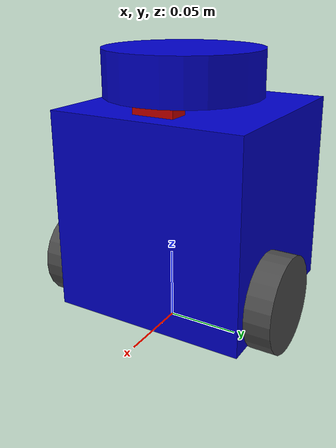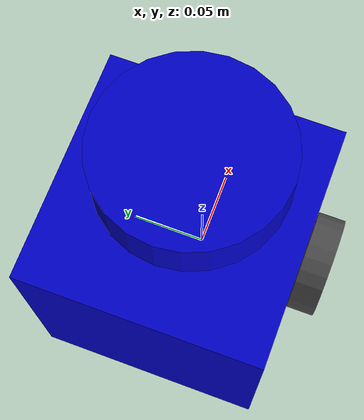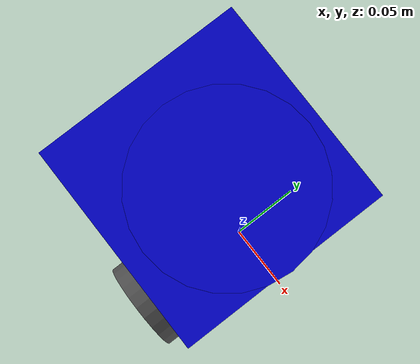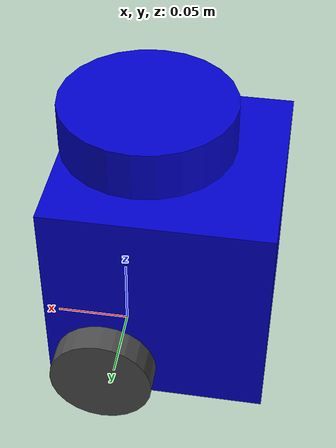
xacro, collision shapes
<?xml version="1.0" ?>
<robot name="turtlebot3_burger" xmlns:xacro="http://ros.org/wiki/xacro">
  <xacro:arg name="robot_name" default="robot"/>

  <!-- Include common properties -->
  <xacro:include filename="$(find cs_bot)/urdf/common_properties.xacro"/>

  <link name="base_footprint"/>

  <joint name="base_joint" type="fixed">
    <parent link="base_footprint"/>
    <child link="base_link"/>
    <origin xyz="0.0 0.0 0.010" rpy="0 0 0"/>
  </joint>

  <link name="base_link">
    <visual>
      <origin xyz="-0.032 0 0.0" rpy="0 0 0"/>
      <geometry>
        <mesh filename="package://turtlebot3_description/meshes/bases/burger_base.stl" scale="0.001 0.001 0.001"/>
      </geometry>
      <material name="blue"/>
    </visual>

    <collision>
      <origin xyz="-0.032 0 0.070" rpy="0 0 0"/>
      <geometry>
        <box size="0.140 0.140 0.143"/>
      </geometry>
    </collision>

    <inertial>
      <origin xyz="0 0 0" rpy="0 0 0"/>
      <mass value="8.2573504e-01"/>
      <inertia ixx="2.2124416e-03" ixy="-1.2294101e-05" ixz="3.4938785e-05"
               iyy="2.1193702e-03" iyz="-5.0120904e-06"
               izz="2.0064271e-03" />
    </inertial>
  </link>

  <joint name="wheel_left_joint" type="continuous">
    <parent link="base_link"/>
    <child link="wheel_left_link"/>
    <origin xyz="0.0 0.08 0.023" rpy="-1.57 0 0"/>
    <axis xyz="0 0 1"/>
  </joint>

  <link name="wheel_left_link">
    <visual>
      <origin xyz="0 0 0" rpy="1.57 0 0"/>
      <geometry>
        <mesh filename="package://turtlebot3_description/meshes/wheels/left_tire.stl" scale="0.001 0.001 0.001"/>
      </geometry>
      <material name="dark"/>
    </visual>

    <collision>
      <origin xyz="0 0 0" rpy="0 0 0"/>
      <geometry>
        <cylinder length="0.018" radius="0.033"/>
      </geometry>
    </collision>

    <inertial>
      <origin xyz="0 0 0" />
      <mass value="2.8498940e-02" />
      <inertia ixx="1.1175580e-05" ixy="-4.2369783e-11" ixz="-5.9381719e-09"
               iyy="1.1192413e-05" iyz="-1.4400107e-11"
               izz="2.0712558e-05" />
      </inertial>
  </link>

  <joint name="wheel_right_joint" type="continuous">
    <parent link="base_link"/>
    <child link="wheel_right_link"/>
    <origin xyz="0.0 -0.080 0.023" rpy="-1.57 0 0"/>
    <axis xyz="0 0 1"/>
  </joint>

  <link name="wheel_right_link">
    <visual>
      <origin xyz="0 0 0" rpy="1.57 0 0"/>
      <geometry>
        <mesh filename="package://turtlebot3_description/meshes/wheels/right_tire.stl" scale="0.001 0.001 0.001"/>
      </geometry>
      <material name="dark"/>
    </visual>

    <collision>
      <origin xyz="0 0 0" rpy="0 0 0"/>
      <geometry>
        <cylinder length="0.018" radius="0.033"/>
      </geometry>
    </collision>

    <inertial>
      <origin xyz="0 0 0" />
      <mass value="2.8498940e-02" />
      <inertia ixx="1.1175580e-05" ixy="-4.2369783e-11" ixz="-5.9381719e-09"
               iyy="1.1192413e-05" iyz="-1.4400107e-11"
               izz="2.0712558e-05" />
      </inertial>
  </link>

  <joint name="caster_back_joint" type="fixed">
    <parent link="base_link"/>
    <child link="caster_back_link"/>
    <origin xyz="-0.081 0 -0.004" rpy="-1.57 0 0"/>
  </joint>

  <link name="caster_back_link">
    <collision>
      <origin xyz="0 0.001 0" rpy="0 0 0"/>
      <geometry>
        <box size="0.030 0.009 0.020"/>
      </geometry>
    </collision>

    <inertial>
      <origin xyz="0 0 0" />
      <mass value="0.005" />
      <inertia ixx="0.001" ixy="0.0" ixz="0.0"
               iyy="0.001" iyz="0.0"
               izz="0.001" />
    </inertial>
  </link>

  <joint name="imu_joint" type="fixed">
    <parent link="base_link"/>
    <child link="imu_link"/>
    <origin xyz="-0.032 0 0.068" rpy="0 0 0"/>
  </joint>

  <link name="imu_link"/>

  <joint name="scan_joint" type="fixed">
    <parent link="base_link"/>
    <child link="base_scan"/>
    <origin xyz="-0.032 0 0.172" rpy="0 0 0"/>
  </joint>

  <link name="base_scan">
    <visual>
      <origin xyz="0 0 0.0" rpy="0 0 0"/>
      <geometry>
        <mesh filename="package://turtlebot3_description/meshes/sensors/lds.stl" scale="0.001 0.001 0.001"/>
      </geometry>
      <material name="blue"/>
    </visual>

    <collision>
      <origin xyz="0.015 0 -0.0065" rpy="0 0 0"/>
      <geometry>
        <cylinder length="0.0315" radius="0.055"/>
      </geometry>
    </collision>

    <inertial>
      <mass value="0.114" />
      <origin xyz="0 0 0" />
      <inertia ixx="0.001" ixy="0.0" ixz="0.0"
               iyy="0.001" iyz="0.0"
               izz="0.001" />
    </inertial>
  </link>

  <plugin name="gazebo_ros_laser" filename="libgazebo_ros_laser.so">
    <topicName>$(arg robot_name)/scan</topicName>
    <frameName>$(arg robot_name)/base_scan</frameName>
  </plugin>

  <!-- Camera Joint -->
  <joint name="camera_joint" type="fixed">
    <parent link="base_link"/>
    <child link="camera_link"/>
    <origin xyz="0.015 0 0.15" rpy="0 0 0"/>
  </joint>

  <!-- Camera Link -->
  <link name="camera_link">
    <visual>
      <origin xyz="0 0 0" rpy="0 0 0"/>
      <geometry>
        <box size="0.015 0.030 0.027"/>
      </geometry>
      <material name="red"/>
    </visual>

    <collision>
      <origin xyz="0 0 0" rpy="0 0 0"/>
      <geometry>
        <box size="0.015 0.030 0.027"/>
      </geometry>
    </collision>

    <inertial>
      <mass value="0.005"/>
      <origin xyz="0 0 0" rpy="0 0 0"/>
      <inertia ixx="0.001" ixy="0.0" ixz="0.0"
               iyy="0.001" iyz="0.0"
               izz="0.001" />
    </inertial>
  </link>

  <!-- Camera Gazebo Plugin Configuration -->
  <gazebo reference="camera_link">
    <sensor type="camera" name="camera">
      <update_rate>30.0</update_rate>
      <camera name="head">
        <horizontal_fov>1.3962634</horizontal_fov>
        <image>
          <width>800</width>
          <height>600</height>
          <format>R8G8B8</format>
        </image>
        <clip>
          <near>0.02</near>
          <far>300</far>
        </clip>
        <noise>
          <type>gaussian</type>
          <mean>0.0</mean>
          <stddev>0.007</stddev>
        </noise>
      </camera>
      <plugin name="camera_controller" filename="libgazebo_ros_camera.so">
        <alwaysOn>true</alwaysOn>
        <updateRate>0.0</updateRate>
        <cameraName>$(arg robot_name)/camera</cameraName>
        <imageTopicName>image_raw</imageTopicName>
        <cameraInfoTopicName>camera_info</cameraInfoTopicName>
        <frameName>$(arg robot_name)/camera_link</frameName>
        <hackBaseline>0.07</hackBaseline>
        <distortionK1>0.0</distortionK1>
        <distortionK2>0.0</distortionK2>
        <distortionK3>0.0</distortionK3>
        <distortionT1>0.0</distortionT1>
        <distortionT2>0.0</distortionT2>
      </plugin>
    </sensor>
  </gazebo>

  <!-- Color configuration for Gazebo -->
  <gazebo reference="base_link">
    <material>Gazebo/Blue</material>
  </gazebo>

  <gazebo reference="wheel_left_link">
    <material>Gazebo/Blue</material>
  </gazebo>

  <gazebo reference="wheel_right_link">
    <material>Gazebo/Blue</material>
  </gazebo>

  <gazebo reference="caster_back_link">
    <material>Gazebo/Blue</material>
  </gazebo>

  <!-- Add Gazebo color for LiDAR -->
  <gazebo reference="base_scan">
    <material>Gazebo/Blue</material>
  </gazebo>

</robot>

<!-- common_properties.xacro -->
<robot name="xacro_properties" xmlns:xacro="http://ros.org/wiki/xacro">

  <!-- Init colour -->
  <material name="black">
      <color rgba="0.0 0.0 0.0 1.0"/>
  </material>

  <material name="dark">
    <color rgba="0.3 0.3 0.3 1.0"/>
  </material>
  <material name="light_black">
    <color rgba="0.4 0.4 0.4 1.0"/>
  </material>

  <material name="blue">
    <color rgba="0.0 0.0 0.8 1.0"/>
  </material>

  <material name="green">
    <color rgba="0.0 0.8 0.0 1.0"/>
  </material>

  <material name="grey">
    <color rgba="0.5 0.5 0.5 1.0"/>
  </material>

  <material name="orange">
    <color rgba="${255/255} ${108/255} ${10/255} 1.0"/>
  </material>

  <material name="brown">
    <color rgba="${222/255} ${207/255} ${195/255} 1.0"/>
  </material>

  <material name="red">
    <color rgba="0.8 0.0 0.0 1.0"/>
  </material>

  <material name="white">
    <color rgba="1.0 1.0 1.0 1.0"/>
  </material>

  <!-- Gazebo materials -->
  <gazebo reference="base_link">
    <material>Gazebo/Blue</material>
  </gazebo>

  <gazebo reference="wheel_left_link">
    <material>Gazebo/Blue</material>
  </gazebo>

  <gazebo reference="wheel_right_link">
    <material>Gazebo/Blue</material>
  </gazebo>

  <gazebo reference="caster_back_link">
    <material>Gazebo/Blue</material>
  </gazebo>
</robot>
